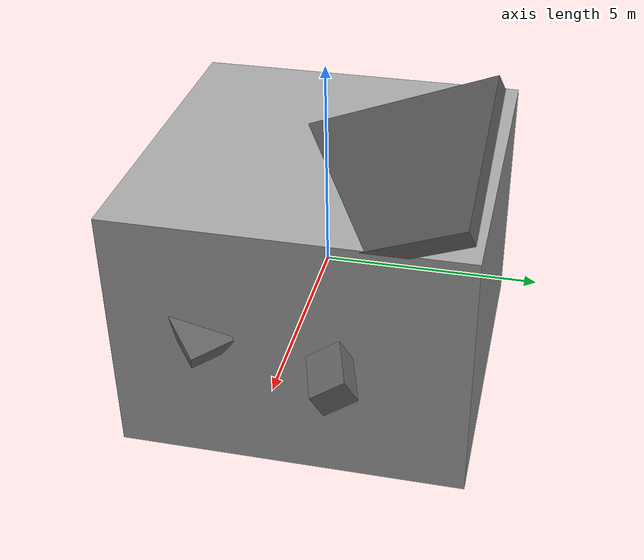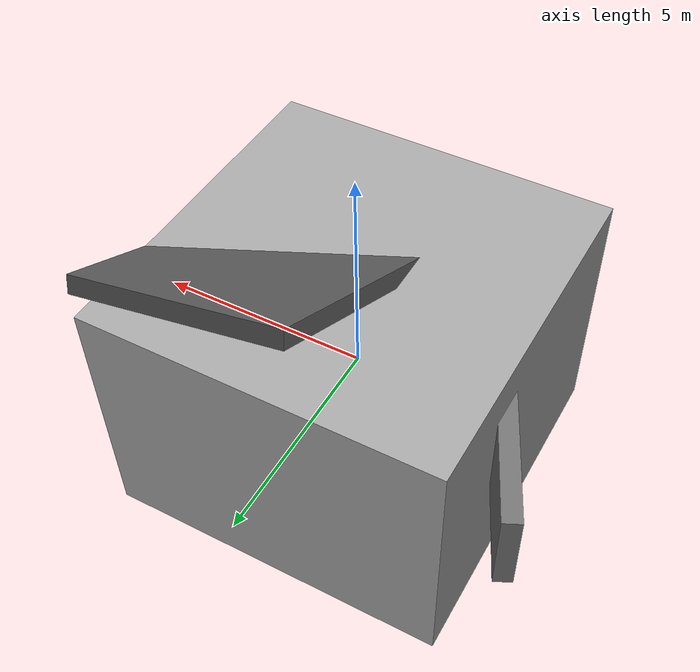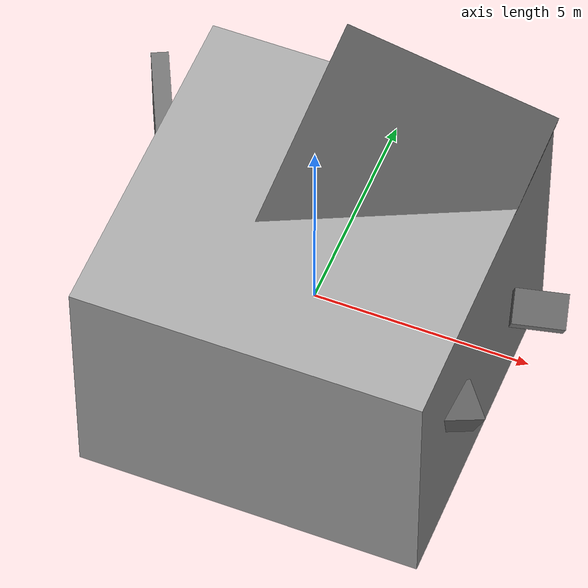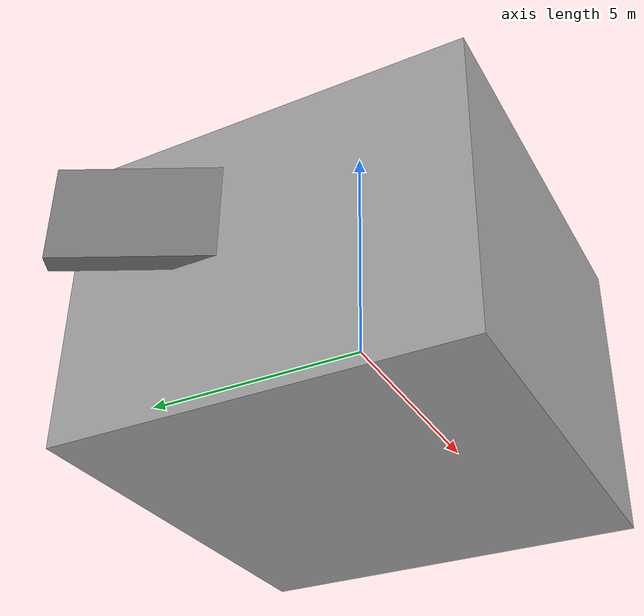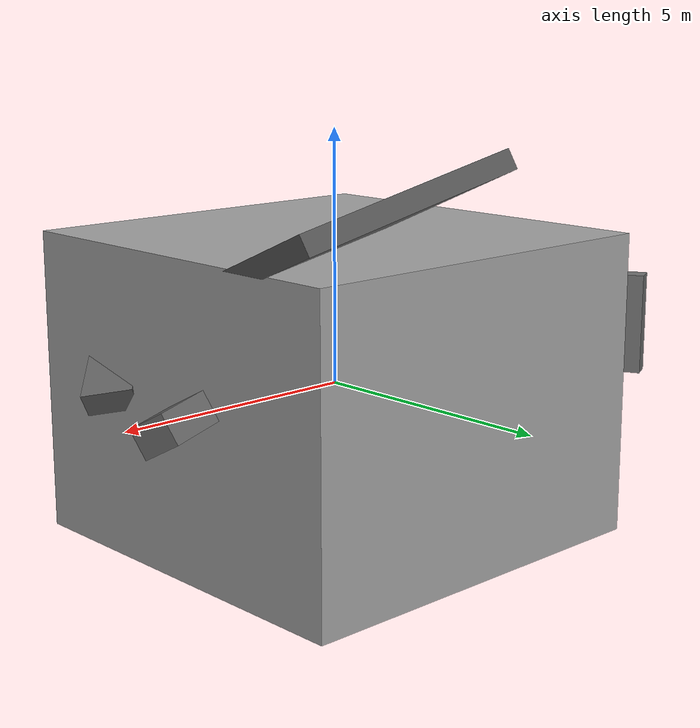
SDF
<?xml version="1.0"?>

<sdf version="1.9">

<model name="damaged_building_small">

  <static>true</static>

  <link name="building">

    <!-- Main Building -->

    <collision name="main_collision">
      <geometry>
        <box>
          <size>8 8 6</size>
        </box>
      </geometry>
    </collision>

    <visual name="main_visual">
      <geometry>
        <box>
          <size>8 8 6</size>
        </box>
      </geometry>

      <material>
        <ambient>0.65 0.65 0.65 1</ambient>
        <diffuse>0.65 0.65 0.65 1</diffuse>
      </material>
    </visual>

    <!-- Missing Roof -->

    <visual name="roof_damage">

      <pose>1.5 1.5 3.2 0.4 0.2 0</pose>

      <geometry>
        <box>
          <size>5 5 0.4</size>
        </box>
      </geometry>

      <material>
        <ambient>0.35 0.35 0.35 1</ambient>
        <diffuse>0.35 0.35 0.35 1</diffuse>
      </material>

    </visual>

    <!-- Collapsed Wall -->

    <visual name="collapsed_wall">

      <pose>-3.4 0 1 0 0 0.45</pose>

      <geometry>
        <box>
          <size>0.4 8 2</size>
        </box>
      </geometry>

      <material>
        <ambient>0.45 0.45 0.45 1</ambient>
        <diffuse>0.45 0.45 0.45 1</diffuse>
      </material>

    </visual>

    <!-- Fallen Concrete -->

    <visual name="fallen_piece1">

      <pose>4.8 1.2 0.35 0.5 0.1 0.3</pose>

      <geometry>
        <box>
          <size>1.2 0.8 0.6</size>
        </box>
      </geometry>

      <material>
        <ambient>0.42 0.42 0.42 1</ambient>
        <diffuse>0.42 0.42 0.42 1</diffuse>
      </material>

    </visual>

    <visual name="fallen_piece2">

      <pose>3.8 -2 0.45 0.2 0.5 0.8</pose>

      <geometry>
        <box>
          <size>1.5 1 0.5</size>
        </box>
      </geometry>

      <material>
        <ambient>0.38 0.38 0.38 1</ambient>
        <diffuse>0.38 0.38 0.38 1</diffuse>
      </material>

    </visual>

    <inertial>
      <mass>1000</mass>
    </inertial>

  </link>

</model>

</sdf>
